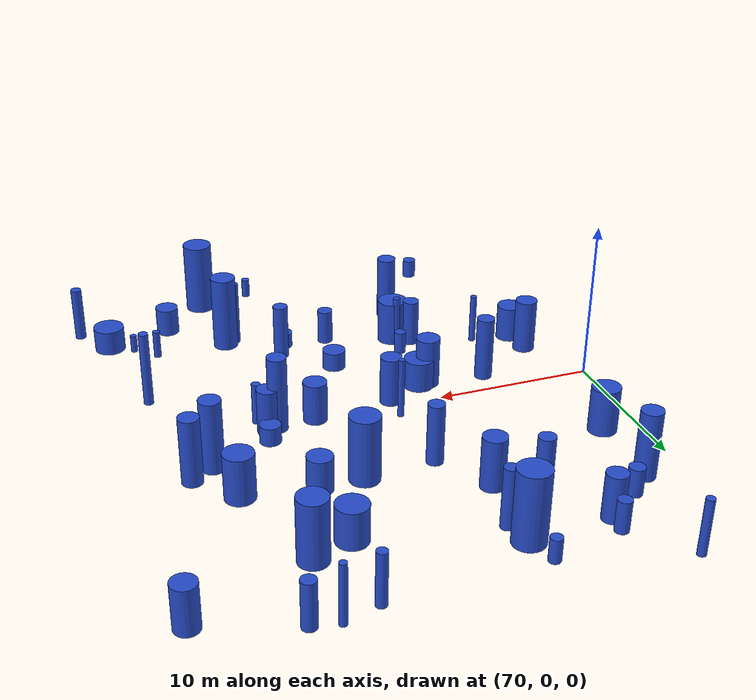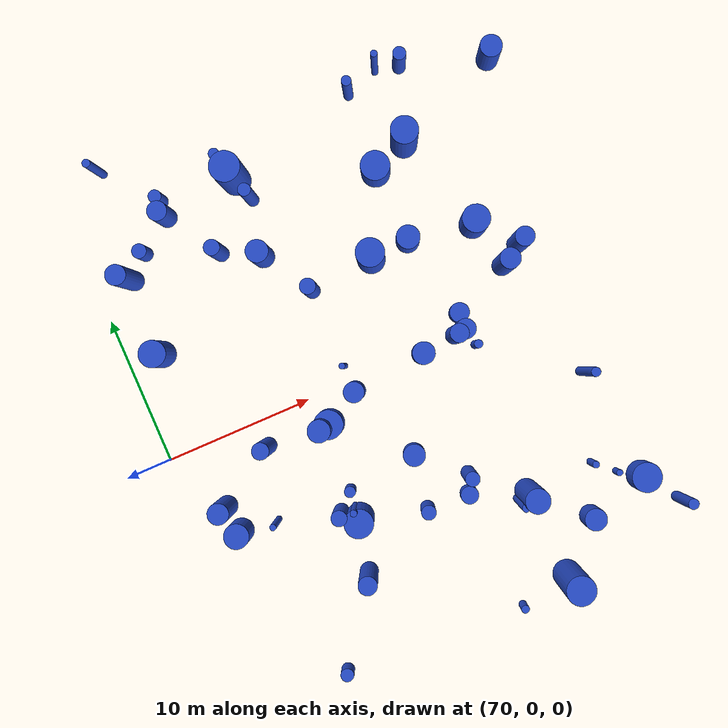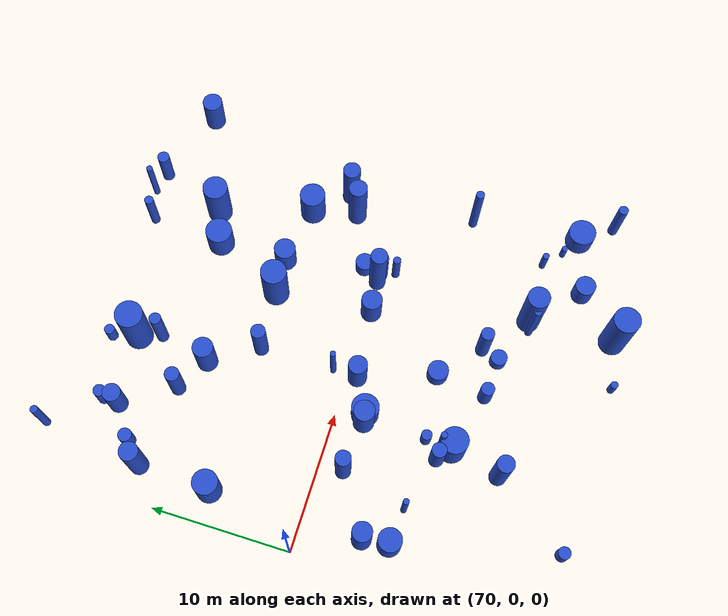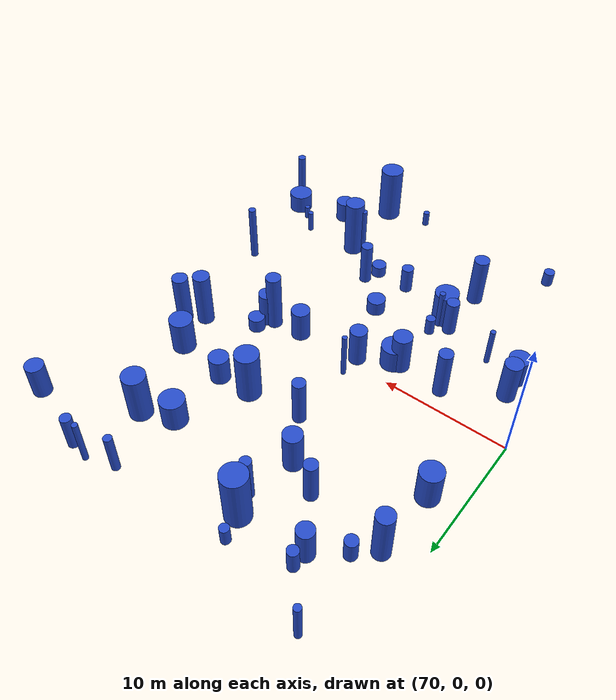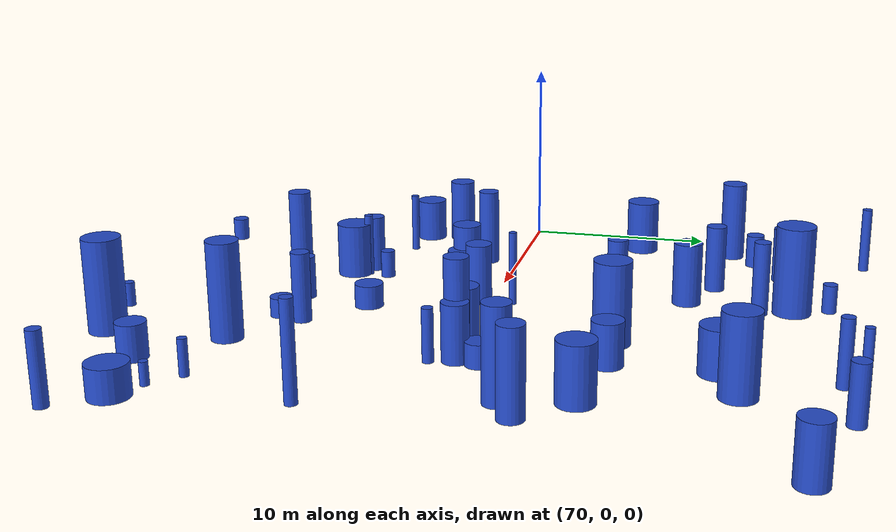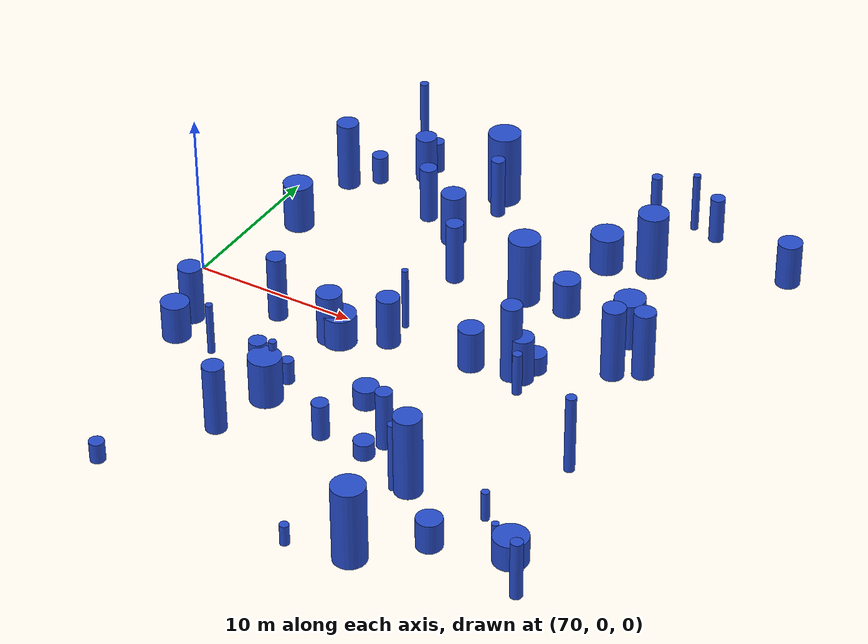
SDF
<sdf version="1.7">
 <world name="easy_forest">
  <model name="1">
   <static>1</static>
   <link name="link">
    <inertial>
     <mass>2</mass>
     <inertia><ixx>1.6827</ixx><ixy>0</ixy><ixz>0</ixz><iyy>1.6827</iyy><iyz>0</iyz><izz>0.274521</izz></inertia>
    </inertial>
    <collision name="collision">
     <geometry><cylinder><length>3.0451</length><radius>0.523947</radius></cylinder></geometry>
     <surface><contact><collide_without_contact>0</collide_without_contact></contact></surface>
    </collision>
    <visual name="visual">
     <geometry><cylinder><length>3.0451</length><radius>0.523947</radius></cylinder></geometry>
     <material>
      <script><uri>file://media/materials/scripts/gazebo.material</uri><name>Gazebo/Blue</name></script>
     </material>
    </visual>
    <gravity>0</gravity>
   </link>
   <pose>79.0825 -7.66138 1.52255 0 -0 0</pose>
  </model>
  <model name="2">
   <static>1</static>
   <link name="link">
    <inertial>
     <mass>2</mass>
     <inertia><ixx>1.6301</ixx><ixy>0</ixy><ixz>0</ixz><iyy>1.6301</iyy><iyz>0</iyz><izz>0.444496</izz></inertia>
    </inertial>
    <collision name="collision">
     <geometry><cylinder><length>2.90639</length><radius>0.666706</radius></cylinder></geometry>
     <surface><contact><collide_without_contact>0</collide_without_contact></contact></surface>
    </collision>
    <visual name="visual">
     <geometry><cylinder><length>2.90639</length><radius>0.666706</radius></cylinder></geometry>
     <material>
      <script><uri>file://media/materials/scripts/gazebo.material</uri><name>Gazebo/Blue</name></script>
     </material>
    </visual>
    <gravity>0</gravity>
   </link>
   <pose>91.2671 0.181225 1.45319 0 -0 0</pose>
  </model>
  <model name="4">
   <static>1</static>
   <link name="link">
    <inertial>
     <mass>2</mass>
     <inertia><ixx>4.07302</ixx><ixy>0</ixy><ixz>0</ixz><iyy>4.07302</iyy><iyz>0</iyz><izz>0.972646</izz></inertia>
    </inertial>
    <collision name="collision">
     <geometry><cylinder><length>4.63899</length><radius>0.986228</radius></cylinder></geometry>
     <surface><contact><collide_without_contact>0</collide_without_contact></contact></surface>
    </collision>
    <visual name="visual">
     <geometry><cylinder><length>4.63899</length><radius>0.986228</radius></cylinder></geometry>
     <material>
      <script><uri>file://media/materials/scripts/gazebo.material</uri><name>Gazebo/Blue</name></script>
     </material>
    </visual>
    <gravity>0</gravity>
   </link>
   <pose>81.4098 15.2934 2.31949 0 -0 0</pose>
  </model>
  <model name="5">
   <static>1</static>
   <link name="link">
    <inertial>
     <mass>2</mass>
     <inertia><ixx>1.14393</ixx><ixy>0</ixy><ixz>0</ixz><iyy>1.14393</iyy><iyz>0</iyz><izz>0.614445</izz></inertia>
    </inertial>
    <collision name="collision">
     <geometry><cylinder><length>2.24059</length><radius>0.783865</radius></cylinder></geometry>
     <surface><contact><collide_without_contact>0</collide_without_contact></contact></surface>
    </collision>
    <visual name="visual">
     <geometry><cylinder><length>2.24059</length><radius>0.783865</radius></cylinder></geometry>
     <material>
      <script><uri>file://media/materials/scripts/gazebo.material</uri><name>Gazebo/Blue</name></script>
     </material>
    </visual>
    <gravity>0</gravity>
   </link>
   <pose>90.2586 7.07092 1.1203 0 -0 0</pose>
  </model>
  <model name="9">
   <static>1</static>
   <link name="link">
    <inertial>
     <mass>2</mass>
     <inertia><ixx>2.64225</ixx><ixy>0</ixy><ixz>0</ixz><iyy>2.64225</iyy><iyz>0</iyz><izz>0.269422</izz></inertia>
    </inertial>
    <collision name="collision">
     <geometry><cylinder><length>3.87882</length><radius>0.519059</radius></cylinder></geometry>
     <surface><contact><collide_without_contact>0</collide_without_contact></contact></surface>
    </collision>
    <visual name="visual">
     <geometry><cylinder><length>3.87882</length><radius>0.519059</radius></cylinder></geometry>
     <material>
      <script><uri>file://media/materials/scripts/gazebo.material</uri><name>Gazebo/Blue</name></script>
     </material>
    </visual>
    <gravity>0</gravity>
   </link>
   <pose>83.1473 6.55157 1.93941 0 -0 0</pose>
  </model>
  <model name="10">
   <static>1</static>
   <link name="link">
    <inertial>
     <mass>2</mass>
     <inertia>
      <ixx>0.345124</ixx>
      <ixy>0</ixy>
      <ixz>0</ixz>
      <iyy>0.345124</iyy>
      <iyz>0</iyz>
      <izz>0.353861</izz>
     </inertia>
    </inertial>
    <collision name="collision">
     <geometry><cylinder><length>1.00457</length><radius>0.594862</radius></cylinder></geometry>
     <surface><contact><collide_without_contact>0</collide_without_contact></contact></surface>
    </collision>
    <visual name="visual">
     <geometry><cylinder><length>1.00457</length><radius>0.594862</radius></cylinder></geometry>
     <material>
      <script><uri>file://media/materials/scripts/gazebo.material</uri><name>Gazebo/Blue</name></script>
     </material>
    </visual>
    <gravity>0</gravity>
   </link>
   <pose>87.3229 -9.93889 0.502286 0 -0 0</pose>
  </model>
  <model name="12">
   <static>1</static>
   <link name="link">
    <inertial>
     <mass>2</mass>
     <inertia><ixx>1.11102</ixx><ixy>0</ixy><ixz>0</ixz><iyy>1.11102</iyy><iyz>0</iyz><izz>0.948739</izz></inertia>
    </inertial>
    <collision name="collision">
     <geometry><cylinder><length>1.95446</length><radius>0.974032</radius></cylinder></geometry>
     <surface><contact><collide_without_contact>0</collide_without_contact></contact></surface>
    </collision>
    <visual name="visual">
     <geometry><cylinder><length>1.95446</length><radius>0.974032</radius></cylinder></geometry>
     <material>
      <script><uri>file://media/materials/scripts/gazebo.material</uri><name>Gazebo/Blue</name></script>
     </material>
    </visual>
    <gravity>0</gravity>
   </link>
   <pose>80.7273 -1.97986 0.977232 0 -0 0</pose>
  </model>
  <model name="15">
   <static>1</static>
   <link name="link">
    <inertial>
     <mass>2</mass>
     <inertia><ixx>3.22143</ixx><ixy>0</ixy><ixz>0</ixz><iyy>3.22143</iyy><iyz>0</iyz><izz>0.399711</izz></inertia>
    </inertial>
    <collision name="collision">
     <geometry><cylinder><length>4.25787</length><radius>0.632227</radius></cylinder></geometry>
     <surface><contact><collide_without_contact>0</collide_without_contact></contact></surface>
    </collision>
    <visual name="visual">
     <geometry><cylinder><length>4.25787</length><radius>0.632227</radius></cylinder></geometry>
     <material>
      <script><uri>file://media/materials/scripts/gazebo.material</uri><name>Gazebo/Blue</name></script>
     </material>
    </visual>
    <gravity>0</gravity>
   </link>
   <pose>96.7974 3.99695 2.12893 0 -0 0</pose>
  </model>
  <model name="19">
   <static>1</static>
   <link name="link">
    <inertial>
     <mass>2</mass>
     <inertia><ixx>3.11365</ixx><ixy>0</ixy><ixz>0</ixz><iyy>3.11365</iyy><iyz>0</iyz><izz>0.812551</izz></inertia>
    </inertial>
    <collision name="collision">
     <geometry><cylinder><length>4.03042</length><radius>0.901416</radius></cylinder></geometry>
     <surface><contact><collide_without_contact>0</collide_without_contact></contact></surface>
    </collision>
    <visual name="visual">
     <geometry><cylinder><length>4.03042</length><radius>0.901416</radius></cylinder></geometry>
     <material>
      <script><uri>file://media/materials/scripts/gazebo.material</uri><name>Gazebo/Blue</name></script>
     </material>
    </visual>
    <gravity>0</gravity>
   </link>
   <pose>92.5748 13.081 2.01521 0 -0 0</pose>
  </model>
  <model name="21">
   <static>1</static>
   <link name="link">
    <inertial>
     <mass>2</mass>
     <inertia><ixx>2.52192</ixx><ixy>0</ixy><ixz>0</ixz><iyy>2.52192</iyy><iyz>0</iyz><izz>0.176826</izz></inertia>
    </inertial>
    <collision name="collision">
     <geometry><cylinder><length>3.82113</length><radius>0.420507</radius></cylinder></geometry>
     <surface><contact><collide_without_contact>0</collide_without_contact></contact></surface>
    </collision>
    <visual name="visual">
     <geometry><cylinder><length>3.82113</length><radius>0.420507</radius></cylinder></geometry>
     <material>
      <script><uri>file://media/materials/scripts/gazebo.material</uri><name>Gazebo/Blue</name></script>
     </material>
    </visual>
    <gravity>0</gravity>
   </link>
   <pose>81.9008 13.6855 1.91057 0 -0 0</pose>
  </model>
  <model name="22">
   <static>1</static>
   <link name="link">
    <inertial>
     <mass>2</mass>
     <inertia><ixx>3.72199</ixx><ixy>0</ixy><ixz>0</ixz><iyy>3.72199</iyy><iyz>0</iyz><izz>0.45137</izz></inertia>
    </inertial>
    <collision name="collision">
     <geometry><cylinder><length>4.58016</length><radius>0.671841</radius></cylinder></geometry>
     <surface><contact><collide_without_contact>0</collide_without_contact></contact></surface>
    </collision>
    <visual name="visual">
     <geometry><cylinder><length>4.58016</length><radius>0.671841</radius></cylinder></geometry>
     <material>
      <script><uri>file://media/materials/scripts/gazebo.material</uri><name>Gazebo/Blue</name></script>
     </material>
    </visual>
    <gravity>0</gravity>
   </link>
   <pose>95.3721 3.08072 2.29008 0 -0 0</pose>
  </model>
  <model name="23">
   <static>1</static>
   <link name="link">
    <inertial>
     <mass>2</mass>
     <inertia><ixx>1.5739</ixx><ixy>0</ixy><ixz>0</ixz><iyy>1.5739</iyy><iyz>0</iyz><izz>0.53027</izz></inertia>
    </inertial>
    <collision name="collision">
     <geometry><cylinder><length>2.80225</length><radius>0.728196</radius></cylinder></geometry>
     <surface><contact><collide_without_contact>0</collide_without_contact></contact></surface>
    </collision>
    <visual name="visual">
     <geometry><cylinder><length>2.80225</length><radius>0.728196</radius></cylinder></geometry>
     <material>
      <script><uri>file://media/materials/scripts/gazebo.material</uri><name>Gazebo/Blue</name></script>
     </material>
    </visual>
    <gravity>0</gravity>
   </link>
   <pose>99.903 16.0704 1.40113 0 -0 0</pose>
  </model>
  <model name="26">
   <static>1</static>
   <link name="link">
    <inertial>
     <mass>2</mass>
     <inertia><ixx>0.43026</ixx><ixy>0</ixy><ixz>0</ixz><iyy>0.43026</iyy><iyz>0</iyz><izz>0.141653</izz></inertia>
    </inertial>
    <collision name="collision">
     <geometry><cylinder><length>1.46854</length><radius>0.376368</radius></cylinder></geometry>
     <surface><contact><collide_without_contact>0</collide_without_contact></contact></surface>
    </collision>
    <visual name="visual">
     <geometry><cylinder><length>1.46854</length><radius>0.376368</radius></cylinder></geometry>
     <material>
      <script><uri>file://media/materials/scripts/gazebo.material</uri><name>Gazebo/Blue</name></script>
     </material>
    </visual>
    <gravity>0</gravity>
   </link>
   <pose>80.2366 -6.5725 0.734269 0 -0 0</pose>
  </model>
  <model name="28">
   <static>1</static>
   <link name="link">
    <inertial>
     <mass>2</mass>
     <inertia>
      <ixx>0.449637</ixx>
      <ixy>0</ixy>
      <ixz>0</ixz>
      <iyy>0.449637</iyy>
      <iyz>0</iyz>
      <izz>0.434403</izz>
     </inertia>
    </inertial>
    <collision name="collision">
     <geometry><cylinder><length>1.18094</length><radius>0.659093</radius></cylinder></geometry>
     <surface><contact><collide_without_contact>0</collide_without_contact></contact></surface>
    </collision>
    <visual name="visual">
     <geometry><cylinder><length>1.18094</length><radius>0.659093</radius></cylinder></geometry>
     <material>
      <script><uri>file://media/materials/scripts/gazebo.material</uri><name>Gazebo/Blue</name></script>
     </material>
    </visual>
    <gravity>0</gravity>
   </link>
   <pose>91.4611 1.32284 0.590468 0 -0 0</pose>
  </model>
  <model name="31">
   <static>1</static>
   <link name="link">
    <inertial>
     <mass>2</mass>
     <inertia>
      <ixx>0.242333</ixx>
      <ixy>0</ixy>
      <ixz>0</ixz>
      <iyy>0.242333</iyy>
      <iyz>0</iyz>
      <izz>0.0472233</izz>
     </inertia>
    </inertial>
    <collision name="collision">
     <geometry><cylinder><length>1.14557</length><radius>0.217309</radius></cylinder></geometry>
     <surface><contact><collide_without_contact>0</collide_without_contact></contact></surface>
    </collision>
    <visual name="visual">
     <geometry><cylinder><length>1.14557</length><radius>0.217309</radius></cylinder></geometry>
     <material>
      <script><uri>file://media/materials/scripts/gazebo.material</uri><name>Gazebo/Blue</name></script>
     </material>
    </visual>
    <gravity>0</gravity>
   </link>
   <pose>96.9028 -12.4642 0.572784 0 -0 0</pose>
  </model>
  <model name="32">
   <static>1</static>
   <link name="link">
    <inertial>
     <mass>2</mass>
     <inertia>
      <ixx>0.440675</ixx>
      <ixy>0</ixy>
      <ixz>0</ixz>
      <iyy>0.440675</iyy>
      <iyz>0</iyz>
      <izz>0.135764</izz>
     </inertia>
    </inertial>
    <collision name="collision">
     <geometry><cylinder><length>1.49558</length><radius>0.368461</radius></cylinder></geometry>
     <surface><contact><collide_without_contact>0</collide_without_contact></contact></surface>
    </collision>
    <visual name="visual">
     <geometry><cylinder><length>1.49558</length><radius>0.368461</radius></cylinder></geometry>
     <material>
      <script><uri>file://media/materials/scripts/gazebo.material</uri><name>Gazebo/Blue</name></script>
     </material>
    </visual>
    <gravity>0</gravity>
   </link>
   <pose>80.853 17.1568 0.74779 0 -0 0</pose>
  </model>
  <model name="36">
   <static>1</static>
   <link name="link">
    <inertial>
     <mass>2</mass>
     <inertia>
      <ixx>0.656964</ixx>
      <ixy>0</ixy>
      <ixz>0</ixz>
      <iyy>0.656964</iyy>
      <iyz>0</iyz>
      <izz>0.237017</izz>
     </inertia>
    </inertial>
    <collision name="collision">
     <geometry><cylinder><length>1.79742</length><radius>0.486844</radius></cylinder></geometry>
     <surface><contact><collide_without_contact>0</collide_without_contact></contact></surface>
    </collision>
    <visual name="visual">
     <geometry><cylinder><length>1.79742</length><radius>0.486844</radius></cylinder></geometry>
     <material>
      <script><uri>file://media/materials/scripts/gazebo.material</uri><name>Gazebo/Blue</name></script>
     </material>
    </visual>
    <gravity>0</gravity>
   </link>
   <pose>73.9343 13.2036 0.898712 0 -0 0</pose>
  </model>
  <model name="38">
   <static>1</static>
   <link name="link">
    <inertial>
     <mass>2</mass>
     <inertia>
      <ixx>0.527566</ixx>
      <ixy>0</ixy>
      <ixz>0</ixz>
      <iyy>0.527566</iyy>
      <iyz>0</iyz>
      <izz>0.549024</izz>
     </inertia>
    </inertial>
    <collision name="collision">
     <geometry><cylinder><length>1.2322</length><radius>0.740961</radius></cylinder></geometry>
     <surface><contact><collide_without_contact>0</collide_without_contact></contact></surface>
    </collision>
    <visual name="visual">
     <geometry><cylinder><length>1.2322</length><radius>0.740961</radius></cylinder></geometry>
     <material>
      <script><uri>file://media/materials/scripts/gazebo.material</uri><name>Gazebo/Blue</name></script>
     </material>
    </visual>
    <gravity>0</gravity>
   </link>
   <pose>85.0306 -6.07382 0.616102 0 -0 0</pose>
  </model>
  <model name="41">
   <static>1</static>
   <link name="link">
    <inertial>
     <mass>2</mass>
     <inertia>
      <ixx>0.958554</ixx>
      <ixy>0</ixy>
      <ixz>0</ixz>
      <iyy>0.958554</iyy>
      <iyz>0</iyz>
      <izz>0.235925</izz>
     </inertia>
    </inertial>
    <collision name="collision">
     <geometry><cylinder><length>2.24578</length><radius>0.485721</radius></cylinder></geometry>
     <surface><contact><collide_without_contact>0</collide_without_contact></contact></surface>
    </collision>
    <visual name="visual">
     <geometry><cylinder><length>2.24578</length><radius>0.485721</radius></cylinder></geometry>
     <material>
      <script><uri>file://media/materials/scripts/gazebo.material</uri><name>Gazebo/Blue</name></script>
     </material>
    </visual>
    <gravity>0</gravity>
   </link>
   <pose>84.4381 -9.72074 1.12289 0 -0 0</pose>
  </model>
  <model name="42">
   <static>1</static>
   <link name="link">
    <inertial>
     <mass>2</mass>
     <inertia>
      <ixx>1.77423</ixx>
      <ixy>0</ixy>
      <ixz>0</ixz>
      <iyy>1.77423</iyy>
      <iyz>0</iyz>
      <izz>0.0440786</izz>
     </inertia>
    </inertial>
    <collision name="collision">
     <geometry><cylinder><length>3.2424</length><radius>0.209949</radius></cylinder></geometry>
     <surface><contact><collide_without_contact>0</collide_without_contact></contact></surface>
    </collision>
    <visual name="visual">
     <geometry><cylinder><length>3.2424</length><radius>0.209949</radius></cylinder></geometry>
     <material>
      <script><uri>file://media/materials/scripts/gazebo.material</uri><name>Gazebo/Blue</name></script>
     </material>
    </visual>
    <gravity>0</gravity>
   </link>
   <pose>75.056 -6.49444 1.6212 0 -0 0</pose>
  </model>
  <model name="45">
   <static>1</static>
   <link name="link">
    <inertial>
     <mass>2</mass>
     <inertia><ixx>2.3255</ixx><ixy>0</ixy><ixz>0</ixz><iyy>2.3255</iyy><iyz>0</iyz><izz>0.485616</izz></inertia>
    </inertial>
    <collision name="collision">
     <geometry><cylinder><length>3.53499</length><radius>0.696861</radius></cylinder></geometry>
     <surface><contact><collide_without_contact>0</collide_without_contact></contact></surface>
    </collision>
    <visual name="visual">
     <geometry><cylinder><length>3.53499</length><radius>0.696861</radius></cylinder></geometry>
     <material>
      <script><uri>file://media/materials/scripts/gazebo.material</uri><name>Gazebo/Blue</name></script>
     </material>
    </visual>
    <gravity>0</gravity>
   </link>
   <pose>72.2614 -4.32324 1.7675 0 -0 0</pose>
  </model>
  <model name="51">
   <static>1</static>
   <link name="link">
    <inertial>
     <mass>2</mass>
     <inertia><ixx>1.66018</ixx><ixy>0</ixy><ixz>0</ixz><iyy>1.66018</iyy><iyz>0</iyz><izz>0.421362</izz></inertia>
    </inertial>
    <collision name="collision">
     <geometry><cylinder><length>2.94906</length><radius>0.649124</radius></cylinder></geometry>
     <surface><contact><collide_without_contact>0</collide_without_contact></contact></surface>
    </collision>
    <visual name="visual">
     <geometry><cylinder><length>2.94906</length><radius>0.649124</radius></cylinder></geometry>
     <material>
      <script><uri>file://media/materials/scripts/gazebo.material</uri><name>Gazebo/Blue</name></script>
     </material>
    </visual>
    <gravity>0</gravity>
   </link>
   <pose>76.2168 14.8566 1.47453 0 -0 0</pose>
  </model>
  <model name="54">
   <static>1</static>
   <link name="link">
    <inertial>
     <mass>2</mass>
     <inertia>
      <ixx>2.11517</ixx>
      <ixy>0</ixy>
      <ixz>0</ixz>
      <iyy>2.11517</iyy>
      <iyz>0</iyz>
      <izz>0.0711682</izz>
     </inertia>
    </inertial>
    <collision name="collision">
     <geometry><cylinder><length>3.53236</length><radius>0.266774</radius></cylinder></geometry>
     <surface><contact><collide_without_contact>0</collide_without_contact></contact></surface>
    </collision>
    <visual name="visual">
     <geometry><cylinder><length>3.53236</length><radius>0.266774</radius></cylinder></geometry>
     <material>
      <script><uri>file://media/materials/scripts/gazebo.material</uri><name>Gazebo/Blue</name></script>
     </material>
    </visual>
    <gravity>0</gravity>
   </link>
   <pose>73.4351 19.2131 1.76618 0 -0 0</pose>
  </model>
  <model name="56">
   <static>1</static>
   <link name="link">
    <inertial>
     <mass>2</mass>
     <inertia><ixx>2.51562</ixx><ixy>0</ixy><ixz>0</ixz><iyy>2.51562</iyy><iyz>0</iyz><izz>0.040758</izz></inertia>
    </inertial>
    <collision name="collision">
     <geometry><cylinder><length>3.8693</length><radius>0.201886</radius></cylinder></geometry>
     <surface><contact><collide_without_contact>0</collide_without_contact></contact></surface>
    </collision>
    <visual name="visual">
     <geometry><cylinder><length>3.8693</length><radius>0.201886</radius></cylinder></geometry>
     <material>
      <script><uri>file://media/materials/scripts/gazebo.material</uri><name>Gazebo/Blue</name></script>
     </material>
    </visual>
    <gravity>0</gravity>
   </link>
   <pose>83.1428 1.12239 1.93465 0 -0 0</pose>
  </model>
  <model name="61">
   <static>1</static>
   <link name="link">
    <inertial>
     <mass>2</mass>
     <inertia><ixx>2.27783</ixx><ixy>0</ixy><ixz>0</ixz><iyy>2.27783</iyy><iyz>0</iyz><izz>0.228142</izz></inertia>
    </inertial>
    <collision name="collision">
     <geometry><cylinder><length>3.60313</length><radius>0.477642</radius></cylinder></geometry>
     <surface><contact><collide_without_contact>0</collide_without_contact></contact></surface>
    </collision>
    <visual name="visual">
     <geometry><cylinder><length>3.60313</length><radius>0.477642</radius></cylinder></geometry>
     <material>
      <script><uri>file://media/materials/scripts/gazebo.material</uri><name>Gazebo/Blue</name></script>
     </material>
    </visual>
    <gravity>0</gravity>
   </link>
   <pose>87.8311 -8.65193 1.80157 0 -0 0</pose>
  </model>
  <model name="63">
   <static>1</static>
   <link name="link">
    <inertial>
     <mass>2</mass>
     <inertia><ixx>4.26961</ixx><ixy>0</ixy><ixz>0</ixz><iyy>4.26961</iyy><iyz>0</iyz><izz>0.903928</izz></inertia>
    </inertial>
    <collision name="collision">
     <geometry><cylinder><length>4.78601</length><radius>0.950751</radius></cylinder></geometry>
     <surface><contact><collide_without_contact>0</collide_without_contact></contact></surface>
    </collision>
    <visual name="visual">
     <geometry><cylinder><length>4.78601</length><radius>0.950751</radius></cylinder></geometry>
     <material>
      <script><uri>file://media/materials/scripts/gazebo.material</uri><name>Gazebo/Blue</name></script>
     </material>
    </visual>
    <gravity>0</gravity>
   </link>
   <pose>91.2058 -17.4489 2.39301 0 -0 0</pose>
  </model>
  <model name="67">
   <static>1</static>
   <link name="link">
    <inertial>
     <mass>2</mass>
     <inertia><ixx>1.2535</ixx><ixy>0</ixy><ixz>0</ixz><iyy>1.2535</iyy><iyz>0</iyz><izz>0.691722</izz></inertia>
    </inertial>
    <collision name="collision">
     <geometry><cylinder><length>2.33363</length><radius>0.831699</radius></cylinder></geometry>
     <surface><contact><collide_without_contact>0</collide_without_contact></contact></surface>
    </collision>
    <visual name="visual">
     <geometry><cylinder><length>2.33363</length><radius>0.831699</radius></cylinder></geometry>
     <material>
      <script><uri>file://media/materials/scripts/gazebo.material</uri><name>Gazebo/Blue</name></script>
     </material>
    </visual>
    <gravity>0</gravity>
   </link>
   <pose>72.4865 -6.20072 1.16682 0 -0 0</pose>
  </model>
  <model name="72">
   <static>1</static>
   <link name="link">
    <inertial>
     <mass>2</mass>
     <inertia>
      <ixx>1.21735</ixx>
      <ixy>0</ixy>
      <ixz>0</ixz>
      <iyy>1.21735</iyy>
      <iyz>0</iyz>
      <izz>0.0781316</izz>
     </inertia>
    </inertial>
    <collision name="collision">
     <geometry><cylinder><length>2.65889</length><radius>0.27952</radius></cylinder></geometry>
     <surface><contact><collide_without_contact>0</collide_without_contact></contact></surface>
    </collision>
    <visual name="visual">
     <geometry><cylinder><length>2.65889</length><radius>0.27952</radius></cylinder></geometry>
     <material>
      <script><uri>file://media/materials/scripts/gazebo.material</uri><name>Gazebo/Blue</name></script>
     </material>
    </visual>
    <gravity>0</gravity>
   </link>
   <pose>91.6373 -1.02528 1.32944 0 -0 0</pose>
  </model>
  <model name="83">
   <static>1</static>
   <link name="link">
    <inertial>
     <mass>2</mass>
     <inertia><ixx>0.5848</ixx><ixy>0</ixy><ixz>0</ixz><iyy>0.5848</iyy><iyz>0</iyz><izz>0.0546069</izz></inertia>
    </inertial>
    <collision name="collision">
     <geometry><cylinder><length>1.82893</length><radius>0.233681</radius></cylinder></geometry>
     <surface><contact><collide_without_contact>0</collide_without_contact></contact></surface>
    </collision>
    <visual name="visual">
     <geometry><cylinder><length>1.82893</length><radius>0.233681</radius></cylinder></geometry>
     <material>
      <script><uri>file://media/materials/scripts/gazebo.material</uri><name>Gazebo/Blue</name></script>
     </material>
    </visual>
    <gravity>0</gravity>
   </link>
   <pose>95.5868 -11.2314 0.914464 0 -0 0</pose>
  </model>
  <model name="85">
   <static>1</static>
   <link name="link">
    <inertial>
     <mass>2</mass>
     <inertia>
      <ixx>0.920511</ixx>
      <ixy>0</ixy>
      <ixz>0</ixz>
      <iyy>0.920511</iyy>
      <iyz>0</iyz>
      <izz>0.981986</izz>
     </inertia>
    </inertial>
    <collision name="collision">
     <geometry><cylinder><length>1.60534</length><radius>0.990952</radius></cylinder></geometry>
     <surface><contact><collide_without_contact>0</collide_without_contact></contact></surface>
    </collision>
    <visual name="visual">
     <geometry><cylinder><length>1.60534</length><radius>0.990952</radius></cylinder></geometry>
     <material>
      <script><uri>file://media/materials/scripts/gazebo.material</uri><name>Gazebo/Blue</name></script>
     </material>
    </visual>
    <gravity>0</gravity>
   </link>
   <pose>98.3417 -13.3671 0.802669 0 -0 0</pose>
  </model>
  <model name="86">
   <static>1</static>
   <link name="link">
    <inertial>
     <mass>2</mass>
     <inertia><ixx>1.42396</ixx><ixy>0</ixy><ixz>0</ixz><iyy>1.42396</iyy><iyz>0</iyz><izz>0.553452</izz></inertia>
    </inertial>
    <collision name="collision">
     <geometry><cylinder><length>2.62363</length><radius>0.743944</radius></cylinder></geometry>
     <surface><contact><collide_without_contact>0</collide_without_contact></contact></surface>
    </collision>
    <visual name="visual">
     <geometry><cylinder><length>2.62363</length><radius>0.743944</radius></cylinder></geometry>
     <material>
      <script><uri>file://media/materials/scripts/gazebo.material</uri><name>Gazebo/Blue</name></script>
     </material>
    </visual>
    <gravity>0</gravity>
   </link>
   <pose>88.2037 -0.176928 1.31181 0 -0 0</pose>
  </model>
  <model name="89">
   <static>1</static>
   <link name="link">
    <inertial>
     <mass>2</mass>
     <inertia><ixx>1.39946</ixx><ixy>0</ixy><ixz>0</ixz><iyy>1.39946</iyy><iyz>0</iyz><izz>0.941003</izz></inertia>
    </inertial>
    <collision name="collision">
     <geometry><cylinder><length>2.36088</length><radius>0.970053</radius></cylinder></geometry>
     <surface><contact><collide_without_contact>0</collide_without_contact></contact></surface>
    </collision>
    <visual name="visual">
     <geometry><cylinder><length>2.36088</length><radius>0.970053</radius></cylinder></geometry>
     <material>
      <script><uri>file://media/materials/scripts/gazebo.material</uri><name>Gazebo/Blue</name></script>
     </material>
    </visual>
    <gravity>0</gravity>
   </link>
   <pose>90.1267 12.1076 1.18044 0 -0 0</pose>
  </model>
  <model name="91">
   <static>1</static>
   <link name="link">
    <inertial>
     <mass>2</mass>
     <inertia><ixx>3.40386</ixx><ixy>0</ixy><ixz>0</ixz><iyy>3.40386</iyy><iyz>0</iyz><izz>0.444034</izz></inertia>
    </inertial>
    <collision name="collision">
     <geometry><cylinder><length>4.36933</length><radius>0.666359</radius></cylinder></geometry>
     <surface><contact><collide_without_contact>0</collide_without_contact></contact></surface>
    </collision>
    <visual name="visual">
     <geometry><cylinder><length>4.36933</length><radius>0.666359</radius></cylinder></geometry>
     <material>
      <script><uri>file://media/materials/scripts/gazebo.material</uri><name>Gazebo/Blue</name></script>
     </material>
    </visual>
    <gravity>0</gravity>
   </link>
   <pose>72.5225 11.873 2.18467 0 -0 0</pose>
  </model>
  <model name="92">
   <static>1</static>
   <link name="link">
    <inertial>
     <mass>2</mass>
     <inertia>
      <ixx>0.302724</ixx>
      <ixy>0</ixy>
      <ixz>0</ixz>
      <iyy>0.302724</iyy>
      <iyz>0</iyz>
      <izz>0.0716711</izz>
     </inertia>
    </inertial>
    <collision name="collision">
     <geometry><cylinder><length>1.26544</length><radius>0.267715</radius></cylinder></geometry>
     <surface><contact><collide_without_contact>0</collide_without_contact></contact></surface>
    </collision>
    <visual name="visual">
     <geometry><cylinder><length>1.26544</length><radius>0.267715</radius></cylinder></geometry>
     <material>
      <script><uri>file://media/materials/scripts/gazebo.material</uri><name>Gazebo/Blue</name></script>
     </material>
    </visual>
    <gravity>0</gravity>
   </link>
   <pose>87.692 -18.1768 0.632718 0 -0 0</pose>
  </model>
  <model name="95">
   <static>1</static>
   <link name="link">
    <inertial>
     <mass>2</mass>
     <inertia><ixx>4.14236</ixx><ixy>0</ixy><ixz>0</ixz><iyy>4.14236</iyy><iyz>0</iyz><izz>0.364816</izz></inertia>
    </inertial>
    <collision name="collision">
     <geometry><cylinder><length>4.87439</length><radius>0.604</radius></cylinder></geometry>
     <surface><contact><collide_without_contact>0</collide_without_contact></contact></surface>
    </collision>
    <visual name="visual">
     <geometry><cylinder><length>4.87439</length><radius>0.604</radius></cylinder></geometry>
     <material>
      <script><uri>file://media/materials/scripts/gazebo.material</uri><name>Gazebo/Blue</name></script>
     </material>
    </visual>
    <gravity>0</gravity>
   </link>
   <pose>90.6245 0.09421 2.4372 0 -0 0</pose>
  </model>
  <model name="96">
   <static>1</static>
   <link name="link">
    <inertial>
     <mass>2</mass>
     <inertia><ixx>2.08596</ixx><ixy>0</ixy><ixz>0</ixz><iyy>2.08596</iyy><iyz>0</iyz><izz>0.551837</izz></inertia>
    </inertial>
    <collision name="collision">
     <geometry><cylinder><length>3.29549</length><radius>0.742857</radius></cylinder></geometry>
     <surface><contact><collide_without_contact>0</collide_without_contact></contact></surface>
    </collision>
    <visual name="visual">
     <geometry><cylinder><length>3.29549</length><radius>0.742857</radius></cylinder></geometry>
     <material>
      <script><uri>file://media/materials/scripts/gazebo.material</uri><name>Gazebo/Blue</name></script>
     </material>
    </visual>
    <gravity>0</gravity>
   </link>
   <pose>81.0577 9.93077 1.64775 0 -0 0</pose>
  </model>
  <model name="97">
   <static>1</static>
   <link name="link">
    <inertial>
     <mass>2</mass>
     <inertia><ixx>4.42185</ixx><ixy>0</ixy><ixz>0</ixz><iyy>4.42185</iyy><iyz>0</iyz><izz>0.636122</izz></inertia>
    </inertial>
    <collision name="collision">
     <geometry><cylinder><length>4.96213</length><radius>0.797572</radius></cylinder></geometry>
     <surface><contact><collide_without_contact>0</collide_without_contact></contact></surface>
    </collision>
    <visual name="visual">
     <geometry><cylinder><length>4.96213</length><radius>0.797572</radius></cylinder></geometry>
     <material>
      <script><uri>file://media/materials/scripts/gazebo.material</uri><name>Gazebo/Blue</name></script>
     </material>
    </visual>
    <gravity>0</gravity>
   </link>
   <pose>90.9308 -11.287 2.48107 0 -0 0</pose>
  </model>
  <model name="98">
   <static>1</static>
   <link name="link">
    <inertial>
     <mass>2</mass>
     <inertia><ixx>1.87546</ixx><ixy>0</ixy><ixz>0</ixz><iyy>1.87546</iyy><iyz>0</iyz><izz>0.460894</izz></inertia>
    </inertial>
    <collision name="collision">
     <geometry><cylinder><length>3.14167</length><radius>0.678891</radius></cylinder></geometry>
     <surface><contact><collide_without_contact>0</collide_without_contact></contact></surface>
    </collision>
    <visual name="visual">
     <geometry><cylinder><length>3.14167</length><radius>0.678891</radius></cylinder></geometry>
     <material>
      <script><uri>file://media/materials/scripts/gazebo.material</uri><name>Gazebo/Blue</name></script>
     </material>
    </visual>
    <gravity>0</gravity>
   </link>
   <pose>83.1274 -0.687307 1.57083 0 -0 0</pose>
  </model>
  <model name="105">
   <static>1</static>
   <link name="link">
    <inertial>
     <mass>2</mass>
     <inertia><ixx>1.86414</ixx><ixy>0</ixy><ixz>0</ixz><iyy>1.86414</iyy><iyz>0</iyz><izz>0.793275</izz></inertia>
    </inertial>
    <collision name="collision">
     <geometry><cylinder><length>2.96732</length><radius>0.89066</radius></cylinder></geometry>
     <surface><contact><collide_without_contact>0</collide_without_contact></contact></surface>
    </collision>
    <visual name="visual">
     <geometry><cylinder><length>2.96732</length><radius>0.89066</radius></cylinder></geometry>
     <material>
      <script><uri>file://media/materials/scripts/gazebo.material</uri><name>Gazebo/Blue</name></script>
     </material>
    </visual>
    <gravity>0</gravity>
   </link>
   <pose>72.332 6.63262 1.48366 0 -0 0</pose>
  </model>
  <model name="113">
   <static>1</static>
   <link name="link">
    <inertial>
     <mass>2</mass>
     <inertia><ixx>3.37203</ixx><ixy>0</ixy><ixz>0</ixz><iyy>3.37203</iyy><iyz>0</iyz><izz>0.871441</izz></inertia>
    </inertial>
    <collision name="collision">
     <geometry><cylinder><length>4.19736</length><radius>0.93351</radius></cylinder></geometry>
     <surface><contact><collide_without_contact>0</collide_without_contact></contact></surface>
    </collision>
    <visual name="visual">
     <geometry><cylinder><length>4.19736</length><radius>0.93351</radius></cylinder></geometry>
     <material>
      <script><uri>file://media/materials/scripts/gazebo.material</uri><name>Gazebo/Blue</name></script>
     </material>
    </visual>
    <gravity>0</gravity>
   </link>
   <pose>87.5579 6.90231 2.09868 0 -0 0</pose>
  </model>
  <model name="114">
   <static>1</static>
   <link name="link">
    <inertial>
     <mass>2</mass>
     <inertia><ixx>3.18692</ixx><ixy>0</ixy><ixz>0</ixz><iyy>3.18692</iyy><iyz>0</iyz><izz>0.378478</izz></inertia>
    </inertial>
    <collision name="collision">
     <geometry><cylinder><length>4.241</length><radius>0.615206</radius></cylinder></geometry>
     <surface><contact><collide_without_contact>0</collide_without_contact></contact></surface>
    </collision>
    <visual name="visual">
     <geometry><cylinder><length>4.241</length><radius>0.615206</radius></cylinder></geometry>
     <material>
      <script><uri>file://media/materials/scripts/gazebo.material</uri><name>Gazebo/Blue</name></script>
     </material>
    </visual>
    <gravity>0</gravity>
   </link>
   <pose>79.1976 -12.0524 2.1205 0 -0 0</pose>
  </model>
  <model name="115">
   <static>1</static>
   <link name="link">
    <inertial>
     <mass>2</mass>
     <inertia><ixx>2.99507</ixx><ixy>0</ixy><ixz>0</ixz><iyy>2.99507</iyy><iyz>0</iyz><izz>0.308762</izz></inertia>
    </inertial>
    <collision name="collision">
     <geometry><cylinder><length>4.12846</length><radius>0.555664</radius></cylinder></geometry>
     <surface><contact><collide_without_contact>0</collide_without_contact></contact></surface>
    </collision>
    <visual name="visual">
     <geometry><cylinder><length>4.12846</length><radius>0.555664</radius></cylinder></geometry>
     <material>
      <script><uri>file://media/materials/scripts/gazebo.material</uri><name>Gazebo/Blue</name></script>
     </material>
    </visual>
    <gravity>0</gravity>
   </link>
   <pose>76.3764 -1.7317 2.06423 0 -0 0</pose>
  </model>
  <model name="117">
   <static>1</static>
   <link name="link">
    <inertial>
     <mass>2</mass>
     <inertia><ixx>1.86916</ixx><ixy>0</ixy><ixz>0</ixz><iyy>1.86916</iyy><iyz>0</iyz><izz>0.847978</izz></inertia>
    </inertial>
    <collision name="collision">
     <geometry><cylinder><length>2.94466</length><radius>0.920857</radius></cylinder></geometry>
     <surface><contact><collide_without_contact>0</collide_without_contact></contact></surface>
    </collision>
    <visual name="visual">
     <geometry><cylinder><length>2.94466</length><radius>0.920857</radius></cylinder></geometry>
     <material>
      <script><uri>file://media/materials/scripts/gazebo.material</uri><name>Gazebo/Blue</name></script>
     </material>
    </visual>
    <gravity>0</gravity>
   </link>
   <pose>94.6592 6.35378 1.47233 0 -0 0</pose>
  </model>
  <model name="123">
   <static>1</static>
   <link name="link">
    <inertial>
     <mass>2</mass>
     <inertia>
      <ixx>2.36346</ixx>
      <ixy>0</ixy>
      <ixz>0</ixz>
      <iyy>2.36346</iyy>
      <iyz>0</iyz>
      <izz>0.0502241</izz>
     </inertia>
    </inertial>
    <collision name="collision">
     <geometry><cylinder><length>3.74567</length><radius>0.224107</radius></cylinder></geometry>
     <surface><contact><collide_without_contact>0</collide_without_contact></contact></surface>
    </collision>
    <visual name="visual">
     <geometry><cylinder><length>3.74567</length><radius>0.224107</radius></cylinder></geometry>
     <material>
      <script><uri>file://media/materials/scripts/gazebo.material</uri><name>Gazebo/Blue</name></script>
     </material>
    </visual>
    <gravity>0</gravity>
   </link>
   <pose>92.7403 18.2825 1.87284 0 -0 0</pose>
  </model>
  <model name="126">
   <static>1</static>
   <link name="link">
    <inertial>
     <mass>2</mass>
     <inertia>
      <ixx>3.08027</ixx>
      <ixy>0</ixy>
      <ixz>0</ixz>
      <iyy>3.08027</iyy>
      <iyz>0</iyz>
      <izz>0.0657482</izz>
     </inertia>
    </inertial>
    <collision name="collision">
     <geometry><cylinder><length>4.27603</length><radius>0.256414</radius></cylinder></geometry>
     <surface><contact><collide_without_contact>0</collide_without_contact></contact></surface>
    </collision>
    <visual name="visual">
     <geometry><cylinder><length>4.27603</length><radius>0.256414</radius></cylinder></geometry>
     <material>
      <script><uri>file://media/materials/scripts/gazebo.material</uri><name>Gazebo/Blue</name></script>
     </material>
    </visual>
    <gravity>0</gravity>
   </link>
   <pose>90.1417 -11.5311 2.13801 0 -0 0</pose>
  </model>
  <model name="127">
   <static>1</static>
   <link name="link">
    <inertial>
     <mass>2</mass>
     <inertia>
      <ixx>0.824625</ixx>
      <ixy>0</ixy>
      <ixz>0</ixz>
      <iyy>0.824625</iyy>
      <iyz>0</iyz>
      <izz>0.546132</izz>
     </inertia>
    </inertial>
    <collision name="collision">
     <geometry><cylinder><length>1.81916</length><radius>0.739007</radius></cylinder></geometry>
     <surface><contact><collide_without_contact>0</collide_without_contact></contact></surface>
    </collision>
    <visual name="visual">
     <geometry><cylinder><length>1.81916</length><radius>0.739007</radius></cylinder></geometry>
     <material>
      <script><uri>file://media/materials/scripts/gazebo.material</uri><name>Gazebo/Blue</name></script>
     </material>
    </visual>
    <gravity>0</gravity>
   </link>
   <pose>94.1785 -14.5155 0.909582 0 -0 0</pose>
  </model>
  <model name="130">
   <static>1</static>
   <link name="link">
    <inertial>
     <mass>2</mass>
     <inertia>
      <ixx>3.94517</ixx>
      <ixy>0</ixy>
      <ixz>0</ixz>
      <iyy>3.94517</iyy>
      <iyz>0</iyz>
      <izz>0.0924927</izz>
     </inertia>
    </inertial>
    <collision name="collision">
     <geometry><cylinder><length>4.83669</length><radius>0.304126</radius></cylinder></geometry>
     <surface><contact><collide_without_contact>0</collide_without_contact></contact></surface>
    </collision>
    <visual name="visual">
     <geometry><cylinder><length>4.83669</length><radius>0.304126</radius></cylinder></geometry>
     <material>
      <script><uri>file://media/materials/scripts/gazebo.material</uri><name>Gazebo/Blue</name></script>
     </material>
    </visual>
    <gravity>0</gravity>
   </link>
   <pose>97.3682 -5.42661 2.41834 0 -0 0</pose>
  </model>
  <model name="131">
   <static>1</static>
   <link name="link">
    <inertial>
     <mass>2</mass>
     <inertia><ixx>1.4896</ixx><ixy>0</ixy><ixz>0</ixz><iyy>1.4896</iyy><iyz>0</iyz><izz>0.188448</izz></inertia>
    </inertial>
    <collision name="collision">
     <geometry><cylinder><length>2.89348</length><radius>0.434106</radius></cylinder></geometry>
     <surface><contact><collide_without_contact>0</collide_without_contact></contact></surface>
    </collision>
    <visual name="visual">
     <geometry><cylinder><length>2.89348</length><radius>0.434106</radius></cylinder></geometry>
     <material>
      <script><uri>file://media/materials/scripts/gazebo.material</uri><name>Gazebo/Blue</name></script>
     </material>
    </visual>
    <gravity>0</gravity>
   </link>
   <pose>94.3332 17.9281 1.44674 0 -0 0</pose>
  </model>
  <model name="132">
   <static>1</static>
   <link name="link">
    <inertial>
     <mass>2</mass>
     <inertia><ixx>2.15321</ixx><ixy>0</ixy><ixz>0</ixz><iyy>2.15321</iyy><iyz>0</iyz><izz>0.120573</izz></inertia>
    </inertial>
    <collision name="collision">
     <geometry><cylinder><length>3.54366</length><radius>0.347236</radius></cylinder></geometry>
     <surface><contact><collide_without_contact>0</collide_without_contact></contact></surface>
    </collision>
    <visual name="visual">
     <geometry><cylinder><length>3.54366</length><radius>0.347236</radius></cylinder></geometry>
     <material>
      <script><uri>file://media/materials/scripts/gazebo.material</uri><name>Gazebo/Blue</name></script>
     </material>
    </visual>
    <gravity>0</gravity>
   </link>
   <pose>99.9528 -15.6208 1.77183 0 -0 0</pose>
  </model>
  <model name="133">
   <static>1</static>
   <link name="link">
    <inertial>
     <mass>2</mass>
     <inertia><ixx>1.89368</ixx><ixy>0</ixy><ixz>0</ixz><iyy>1.89368</iyy><iyz>0</iyz><izz>0.105705</izz></inertia>
    </inertial>
    <collision name="collision">
     <geometry><cylinder><length>3.3234</length><radius>0.325122</radius></cylinder></geometry>
     <surface><contact><collide_without_contact>0</collide_without_contact></contact></surface>
    </collision>
    <visual name="visual">
     <geometry><cylinder><length>3.3234</length><radius>0.325122</radius></cylinder></geometry>
     <material>
      <script><uri>file://media/materials/scripts/gazebo.material</uri><name>Gazebo/Blue</name></script>
     </material>
    </visual>
    <gravity>0</gravity>
   </link>
   <pose>90.5089 17.5373 1.6617 0 -0 0</pose>
  </model>
  <model name="141">
   <static>1</static>
   <link name="link">
    <inertial>
     <mass>2</mass>
     <inertia><ixx>1.84682</ixx><ixy>0</ixy><ixz>0</ixz><iyy>1.84682</iyy><iyz>0</iyz><izz>0.922012</izz></inertia>
    </inertial>
    <collision name="collision">
     <geometry><cylinder><length>2.88355</length><radius>0.960215</radius></cylinder></geometry>
     <surface><contact><collide_without_contact>0</collide_without_contact></contact></surface>
    </collision>
    <visual name="visual">
     <geometry><cylinder><length>2.88355</length><radius>0.960215</radius></cylinder></geometry>
     <material>
      <script><uri>file://media/materials/scripts/gazebo.material</uri><name>Gazebo/Blue</name></script>
     </material>
    </visual>
    <gravity>0</gravity>
   </link>
   <pose>80.0823 -8.49288 1.44178 0 -0 0</pose>
  </model>
  <model name="142">
   <static>1</static>
   <link name="link">
    <inertial>
     <mass>2</mass>
     <inertia><ixx>2.02342</ixx><ixy>0</ixy><ixz>0</ixz><iyy>2.02342</iyy><iyz>0</iyz><izz>0.563341</izz></inertia>
    </inertial>
    <collision name="collision">
     <geometry><cylinder><length>3.23273</length><radius>0.75056</radius></cylinder></geometry>
     <surface><contact><collide_without_contact>0</collide_without_contact></contact></surface>
    </collision>
    <visual name="visual">
     <geometry><cylinder><length>3.23273</length><radius>0.75056</radius></cylinder></geometry>
     <material>
      <script><uri>file://media/materials/scripts/gazebo.material</uri><name>Gazebo/Blue</name></script>
     </material>
    </visual>
    <gravity>0</gravity>
   </link>
   <pose>80.1219 -2.07261 1.61636 0 -0 0</pose>
  </model>
  <model name="152">
   <static>1</static>
   <link name="link">
    <inertial>
     <mass>2</mass>
     <inertia>
      <ixx>0.764683</ixx>
      <ixy>0</ixy>
      <ixz>0</ixz>
      <iyy>0.764683</iyy>
      <iyz>0</iyz>
      <izz>0.182088</izz>
     </inertia>
    </inertial>
    <collision name="collision">
     <geometry><cylinder><length>2.01043</length><radius>0.426717</radius></cylinder></geometry>
     <surface><contact><collide_without_contact>0</collide_without_contact></contact></surface>
    </collision>
    <visual name="visual">
     <geometry><cylinder><length>2.01043</length><radius>0.426717</radius></cylinder></geometry>
     <material>
      <script><uri>file://media/materials/scripts/gazebo.material</uri><name>Gazebo/Blue</name></script>
     </material>
    </visual>
    <gravity>0</gravity>
   </link>
   <pose>76.3045 16.0021 1.00522 0 -0 0</pose>
  </model>
  <model name="153">
   <static>1</static>
   <link name="link">
    <inertial>
     <mass>2</mass>
     <inertia>
      <ixx>1.93199</ixx>
      <ixy>0</ixy>
      <ixz>0</ixz>
      <iyy>1.93199</iyy>
      <iyz>0</iyz>
      <izz>0.0521486</izz>
     </inertia>
    </inertial>
    <collision name="collision">
     <geometry><cylinder><length>3.38164</length><radius>0.228361</radius></cylinder></geometry>
     <surface><contact><collide_without_contact>0</collide_without_contact></contact></surface>
    </collision>
    <visual name="visual">
     <geometry><cylinder><length>3.38164</length><radius>0.228361</radius></cylinder></geometry>
     <material>
      <script><uri>file://media/materials/scripts/gazebo.material</uri><name>Gazebo/Blue</name></script>
     </material>
    </visual>
    <gravity>0</gravity>
   </link>
   <pose>80.0902 -7.68706 1.69082 0 -0 0</pose>
  </model>
  <model name="157">
   <static>1</static>
   <link name="link">
    <inertial>
     <mass>2</mass>
     <inertia><ixx>2.22331</ixx><ixy>0</ixy><ixz>0</ixz><iyy>2.22331</iyy><iyz>0</iyz><izz>0.273247</izz></inertia>
    </inertial>
    <collision name="collision">
     <geometry><cylinder><length>3.53838</length><radius>0.52273</radius></cylinder></geometry>
     <surface><contact><collide_without_contact>0</collide_without_contact></contact></surface>
    </collision>
    <visual name="visual">
     <geometry><cylinder><length>3.53838</length><radius>0.52273</radius></cylinder></geometry>
     <material>
      <script><uri>file://media/materials/scripts/gazebo.material</uri><name>Gazebo/Blue</name></script>
     </material>
    </visual>
    <gravity>0</gravity>
   </link>
   <pose>78.5638 11.2258 1.76919 0 -0 0</pose>
  </model>
  <model name="162">
   <static>1</static>
   <link name="link">
    <inertial>
     <mass>2</mass>
     <inertia>
      <ixx>0.353499</ixx>
      <ixy>0</ixy>
      <ixz>0</ixz>
      <iyy>0.353499</iyy>
      <iyz>0</iyz>
      <izz>0.19373</izz>
     </inertia>
    </inertial>
    <collision name="collision">
     <geometry><cylinder><length>1.24089</length><radius>0.440148</radius></cylinder></geometry>
     <surface><contact><collide_without_contact>0</collide_without_contact></contact></surface>
    </collision>
    <visual name="visual">
     <geometry><cylinder><length>1.24089</length><radius>0.440148</radius></cylinder></geometry>
     <material>
      <script><uri>file://media/materials/scripts/gazebo.material</uri><name>Gazebo/Blue</name></script>
     </material>
    </visual>
    <gravity>0</gravity>
   </link>
   <pose>75.3051 -17.5097 0.620444 0 -0 0</pose>
  </model>
 </world>
</sdf>
